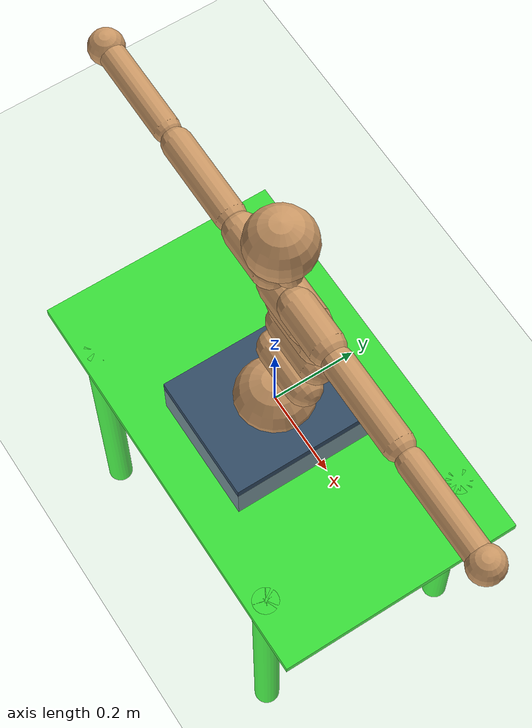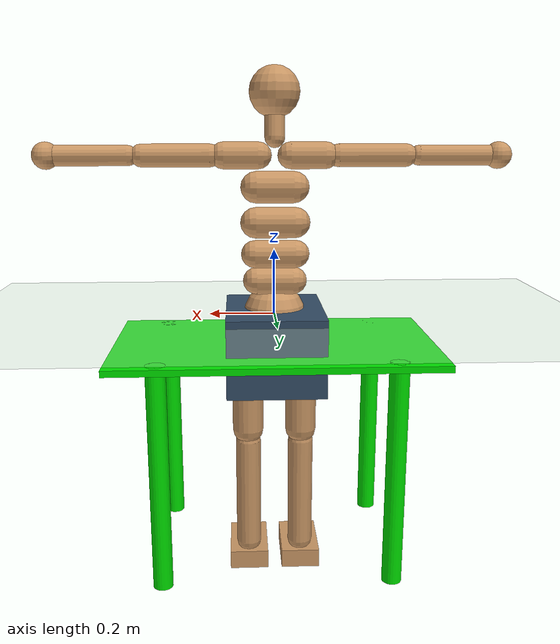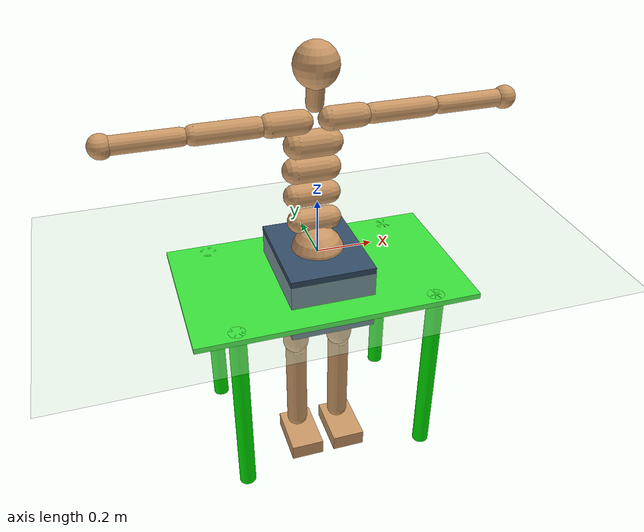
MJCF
<mujoco model="humanoid">
  <compiler angle="degree" inertiafromgeom="true" coordinate="global"/>
  <include file="./common/materials.xml"/>
  <visual>
    <headlight ambient=".4 .4 .4" diffuse=".8 .8 .8" specular="0.1 0.1 0.1"/>
    <map znear=".01"/>
    <quality shadowsize="2048"/>
  </visual>
  <default>
    <joint damping="0.0" armature="0.01" stiffness="0.0" limited="true"/>
    <geom conaffinity="7" condim="1" contype="7" margin="0.001" material="self" rgba="0.8 0.6 .4 1"/>
    <default class="expert">
        <geom conaffinity="7" condim="1" contype="7" margin="0.001" material="self" rgba="0.5 0.0 0.0 1"/>
    </default>
  </default>
  <statistic extent="3" center="0 0 1"/>
  <option timestep="0.00222222222">
    <flag contact="disable"/>
  </option>
  <asset>
    <texture type="skybox" file="./common/sky1.png" gridsize="3 4" gridlayout=".U..LFRB.D.." width="8192" height="8192"/>
    <texture builtin="flat" height="1278" mark="cross" markrgb="1 1 1" name="texgeom" random="0.01" rgb1=".8 .6 .4" rgb2=".8 .6 .4" type="cube" width="127"/>
    <material name="geom" emission="0.2" texture="texgeom" texuniform="true"/>
  </asset>
  <worldbody>
    <light cutoff="100" diffuse="1 1 1" dir="-0 0 -1.3" directional="true" exponent="1" pos="0 0 1.3" specular=".1 .1 .1"/>
    <geom condim="3" friction="1. .1 .1" material="grid" name="floor" pos="0 0 0" rgba=".8 .9 .8 1" size="100 100 .2" type="plane"/>
    <body name="box" pos="0 0 0">
      <joint limited="false" name="box" type="free"/>
      <geom contype="3" conaffinity="3" type="box" size="0.15 0.19 0.120" pos="0 0 -0.1" euler="0 0 0" rgba="0.2 0.3 0.4 1" condim="3" mass="1.0"/>
    </body>
    <body name="table" pos="0 0 0">
      <joint limited="false" name="table" type="free"/>
      <geom contype="3" conaffinity="3" type="box" size="0.499 0.294 0.01" pos="0.0 0.0 -0.1" euler="0 0 0" rgba="0 0.9 0 1"    condim="3" mass="1.0"/>
      <geom contype="3" conaffinity="3" type="cylinder" size="0.03 0.35" pos="-0.35 -0.25 -0.44" euler="0 0 0" rgba="0 0.9 0 1" condim="3" mass="500.0"/>
      <geom contype="3" conaffinity="3" type="cylinder" size="0.03 0.35" pos="-0.35  0.25 -0.44" euler="0 0 0" rgba="0 0.9 0 1" condim="3" mass="500.0"/>
      <geom contype="3" conaffinity="3" type="cylinder" size="0.03 0.35" pos=" 0.35 -0.25 -0.44" euler="0 0 0" rgba="0 0.9 0 1" condim="3" mass="500.0"/>
      <geom contype="3" conaffinity="3" type="cylinder" size="0.03 0.35" pos=" 0.35  0.25 -0.44" euler="0 0 0" rgba="0 0.9 0 1" condim="3" mass="500.0"/>
    </body>
    <body name="Hips" user="0.0000 0.0146 0.0054" pos="0.0000 0.0146 0.0054">
      <joint armature="0" damping="0" limited="false" name="Hips" pos="0.0000 0.0000 0.0000" stiffness="0" type="free"/>
      <geom pos="0.0000 0.0000 0.0000" size="0.0950" type="sphere"/>
      <body name="Spine" user="0.0000 0.0591 0.1523" pos="0.0000 0.0146 0.0054">
        <geom fromto="-0.0550 0.0369 0.1109 0.0550 0.0369 0.1109" size="0.0420" type="capsule"/>
        <joint axis="1.0000 0.0000 0.0000" name="Spine_x" pos="0.0000 0.0439 0.0658" range="-180.0000 180.0000" type="hinge"/>
        <joint axis="0.0000 1.0000 0.0000" name="Spine_y" pos="0.0000 0.0439 0.0658" range="-180.0000 180.0000" type="hinge"/>
        <joint axis="0.0000 0.0000 1.0000" name="Spine_z" pos="0.0000 0.0439 0.0658" range="-180.0000 180.0000" type="hinge"/>
        <body name="Spine1" user="0.0000 0.0668 0.2397" pos="0.0000 0.0591 0.1523">
          <geom fromto="-0.0600 0.0630 0.1960 0.0600 0.0630 0.1960" size="0.0420" type="capsule"/>
          <joint axis="1.0000 0.0000 0.0000" name="Spine1_x" pos="0.0000 0.0591 0.1523" range="-180.0000 180.0000" type="hinge"/>
          <joint axis="0.0000 1.0000 0.0000" name="Spine1_y" pos="0.0000 0.0591 0.1523" range="-180.0000 180.0000" type="hinge"/>
          <joint axis="0.0000 0.0000 1.0000" name="Spine1_z" pos="0.0000 0.0591 0.1523" range="-180.0000 180.0000" type="hinge"/>
          <body name="Spine2" user="0.0000 0.0668 0.3275" pos="0.0000 0.0668 0.2397">
            <geom fromto="-0.0575 0.0668 0.2896 0.0575 0.0668 0.2896" size="0.0460" type="capsule"/>
            <joint axis="1.0000 0.0000 0.0000" name="Spine2_x" pos="0.0000 0.0668 0.2397" range="-180.0000 180.0000" type="hinge"/>
            <joint axis="0.0000 1.0000 0.0000" name="Spine2_y" pos="0.0000 0.0668 0.2397" range="-180.0000 180.0000" type="hinge"/>
            <joint axis="0.0000 0.0000 1.0000" name="Spine2_z" pos="0.0000 0.0668 0.2397" range="-180.0000 180.0000" type="hinge"/>
            <body name="Spine3" user="0.0000 0.0240 0.5074" pos="0.0000 0.0668 0.3275">
              <geom fromto="-0.0550 0.0454 0.3914 0.0550 0.0454 0.3914" size="0.0470" type="capsule"/>
              <joint axis="1.0000 0.0000 0.0000" name="Spine3_x" pos="0.0000 0.0668 0.3275" range="-180.0000 180.0000" type="hinge"/>
              <joint axis="0.0000 1.0000 0.0000" name="Spine3_y" pos="0.0000 0.0668 0.3275" range="-180.0000 180.0000" type="hinge"/>
              <joint axis="0.0000 0.0000 1.0000" name="Spine3_z" pos="0.0000 0.0668 0.3275" range="-180.0000 180.0000" type="hinge"/>
              <body name="Neck" user="0.0000 0.0129 0.6768" pos="0.0000 0.0240 0.5074">
                <joint axis="1.0000 0.0000 0.0000" name="Neck_x" pos="0.0000 0.0339 0.5579" range="-180.0000 180.0000" type="hinge"/>
                <joint axis="0.0000 1.0000 0.0000" name="Neck_y" pos="0.0000 0.0339 0.5579" range="-180.0000 180.0000" type="hinge"/>
                <joint axis="0.0000 0.0000 1.0000" name="Neck_z" pos="0.0000 0.0339 0.5579" range="-180.0000 180.0000" type="hinge"/>
                <geom fromto="0.0000 0.0304 0.5336 0.0000 0.0164 0.6131" size="0.0300" type="capsule"/>
                <body name="Head" user="0.0000 0.0129 0.8188" pos="0.0000 0.0129 0.6768">
                  <geom pos="0.0000 0.0129 0.6628" size="0.0750" type="sphere"/>
                  <joint axis="1.0000 0.0000 0.0000" name="Head_x" pos="0.0000 0.0129 0.6768" range="-180.0000 180.0000" type="hinge"/>
                  <joint axis="0.0000 1.0000 0.0000" name="Head_y" pos="0.0000 0.0129 0.6768" range="-180.0000 180.0000" type="hinge"/>
                  <joint axis="0.0000 0.0000 1.0000" name="Head_z" pos="0.0000 0.0129 0.6768" range="-180.0000 180.0000" type="hinge"/>
                </body>
              </body>
              <body name="RightShoulder" user="-0.1708 0.0191 0.4821" pos="0.0000 0.0240 0.5074">
                <joint axis="1.0000 0.0000 0.0000" name="RightShoulder_x" pos="-0.0286 0.0191 0.4821" range="-180.0000 180.0000" type="hinge"/>
                <joint axis="0.0000 1.0000 0.0000" name="RightShoulder_y" pos="-0.0286 0.0191 0.4821" range="-180.0000 180.0000" type="hinge"/>
                <joint axis="0.0000 0.0000 1.0000" name="RightShoulder_z" pos="-0.0286 0.0191 0.4821" range="-180.0000 180.0000" type="hinge"/>
                <geom fromto="-0.0486 0.0191 0.4821 -0.1508 0.0191 0.4821" size="0.0400" type="capsule"/>
                <body name="RightArm" user="-0.4103 0.0191 0.4821" pos="-0.1708 0.0191 0.4821">
                  <joint axis="1.0000 0.0000 0.0000" name="RightArm_x" pos="-0.1708 0.0191 0.4821" range="-180.0000 180.0000" type="hinge"/>
                  <joint axis="0.0000 1.0000 0.0000" name="RightArm_y" pos="-0.1708 0.0191 0.4821" range="-180.0000 180.0000" type="hinge"/>
                  <joint axis="0.0000 0.0000 1.0000" name="RightArm_z" pos="-0.1708 0.0191 0.4821" range="-180.0000 180.0000" type="hinge"/>
                  <geom fromto="-0.1908 0.0191 0.4821 -0.3903 0.0191 0.4821" size="0.0340" type="capsule"/>
                  <body name="RightForeArm" user="-0.6643 0.0191 0.4821" pos="-0.4103 0.0191 0.4821">
                    <joint axis="0.0000 0.0000 1.0000" name="RightForeArm_z" pos="-0.4103 0.0191 0.4821" range="-180.0000 180.0000" type="hinge"/>
                    <geom fromto="-0.4303 0.0191 0.4821 -0.6443 0.0191 0.4821" size="0.0300" type="capsule"/>
                    <body name="RightHand" user="-0.7282 0.0191 0.4821" pos="-0.6643 0.0191 0.4821">
                      <geom pos="-0.6683 0.0191 0.4821" size="0.0400" type="sphere"/>
                      <joint axis="1.0000 0.0000 0.0000" name="RightHand_x" pos="-0.6643 0.0191 0.4821" range="-180.0000 180.0000" type="hinge"/>
                      <joint axis="0.0000 1.0000 0.0000" name="RightHand_y" pos="-0.6643 0.0191 0.4821" range="-180.0000 180.0000" type="hinge"/>
                      <joint axis="0.0000 0.0000 1.0000" name="RightHand_z" pos="-0.6643 0.0191 0.4821" range="-180.0000 180.0000" type="hinge"/>
                    </body>
                  </body>
                </body>
              </body>
              <body name="LeftShoulder" user="0.1708 0.0191 0.4821" pos="-0.0000 0.0240 0.5074">
                <joint axis="1.0000 0.0000 0.0000" name="LeftShoulder_x" pos="0.0286 0.0191 0.4821" range="-180.0000 180.0000" type="hinge"/>
                <joint axis="0.0000 1.0000 0.0000" name="LeftShoulder_y" pos="0.0286 0.0191 0.4821" range="-180.0000 180.0000" type="hinge"/>
                <joint axis="0.0000 0.0000 1.0000" name="LeftShoulder_z" pos="0.0286 0.0191 0.4821" range="-180.0000 180.0000" type="hinge"/>
                <geom fromto="0.0486 0.0191 0.4821 0.1508 0.0191 0.4821" size="0.0400" type="capsule"/>
                <body name="LeftArm" user="0.4103 0.0191 0.4821" pos="0.1708 0.0191 0.4821">
                  <joint axis="1.0000 0.0000 0.0000" name="LeftArm_x" pos="0.1708 0.0191 0.4821" range="-180.0000 180.0000" type="hinge"/>
                  <joint axis="0.0000 1.0000 0.0000" name="LeftArm_y" pos="0.1708 0.0191 0.4821" range="-180.0000 180.0000" type="hinge"/>
                  <joint axis="0.0000 0.0000 1.0000" name="LeftArm_z" pos="0.1708 0.0191 0.4821" range="-180.0000 180.0000" type="hinge"/>
                  <geom fromto="0.1908 0.0191 0.4821 0.3903 0.0191 0.4821" size="0.0340" type="capsule"/>
                  <body name="LeftForeArm" user="0.6643 0.0191 0.4821" pos="0.4103 0.0191 0.4821">
                    <joint axis="0.0000 0.0000 1.0000" name="LeftForeArm_z" pos="0.4103 0.0191 0.4821" range="-180.0000 180.0000" type="hinge"/>
                    <geom fromto="0.4303 0.0191 0.4821 0.6443 0.0191 0.4821" size="0.0300" type="capsule"/>
                    <body name="LeftHand" user="0.7282 0.0191 0.4821" pos="0.6643 0.0191 0.4821">
                      <geom pos="0.6683 0.0191 0.4821" size="0.0400" type="sphere"/>
                      <joint axis="1.0000 0.0000 0.0000" name="LeftHand_x" pos="0.6643 0.0191 0.4821" range="-180.0000 180.0000" type="hinge"/>
                      <joint axis="0.0000 1.0000 0.0000" name="LeftHand_y" pos="0.6643 0.0191 0.4821" range="-180.0000 180.0000" type="hinge"/>
                      <joint axis="0.0000 0.0000 1.0000" name="LeftHand_z" pos="0.6643 0.0191 0.4821" range="-180.0000 180.0000" type="hinge"/>
                    </body>
                  </body>
                </body>
              </body>
            </body>
          </body>
        </body>
      </body>
      <body name="RightUpLeg" user="-0.0849 0.0000 -0.4027" pos="0.0000 0.0146 0.0054">
        <joint axis="1.0000 0.0000 0.0000" name="RightUpLeg_x" pos="-0.0849 0.0000 -0.0248" range="-180.0000 180.0000" type="hinge"/>
        <joint axis="0.0000 1.0000 0.0000" name="RightUpLeg_y" pos="-0.0849 0.0000 -0.0248" range="-180.0000 180.0000" type="hinge"/>
        <joint axis="0.0000 0.0000 1.0000" name="RightUpLeg_z" pos="-0.0849 0.0000 -0.0248" range="-180.0000 180.0000" type="hinge"/>
        <geom fromto="-0.0849 0.0000 -0.0448 -0.0849 0.0000 -0.3827" size="0.0490" type="capsule"/>
        <body name="RightLeg" user="-0.0849 0.0000 -0.7988" pos="-0.0849 0.0000 -0.4027">
          <joint axis="1.0000 0.0000 0.0000" name="RightLeg_x" pos="-0.0849 0.0000 -0.4027" range="-180.0000 180.0000" type="hinge"/>
          <geom contype="1" conaffinity="1" fromto="-0.0849 0.0000 -0.4227 -0.0849 0.0000 -0.7788" size="0.0400" type="capsule"/>
          <body name="RightFoot" user="-0.0849 -0.1308 -0.8464" pos="-0.0849 0.0000 -0.7988">
            <geom contype="1" conaffinity="1" pos="-0.0849 -0.0514 -0.8306" size="0.0620 0.1000 0.0300" quat="1.0000 -0.0000 -0.0000 -0.0000" type="box"/>
            <joint axis="1.0000 0.0000 0.0000" name="RightFoot_x" pos="-0.0849 0.0000 -0.7988" range="-180.0000 180.0000" type="hinge"/>
            <joint axis="0.0000 1.0000 0.0000" name="RightFoot_y" pos="-0.0849 0.0000 -0.7988" range="-180.0000 180.0000" type="hinge"/>
            <joint axis="0.0000 0.0000 1.0000" name="RightFoot_z" pos="-0.0849 0.0000 -0.7988" range="-180.0000 180.0000" type="hinge"/>
          </body>
        </body>
      </body>
      <body name="LeftUpLeg" user="0.0849 0.0000 -0.4027" pos="-0.0000 0.0146 0.0054">
        <joint axis="1.0000 0.0000 0.0000" name="LeftUpLeg_x" pos="0.0849 0.0000 -0.0248" range="-180.0000 180.0000" type="hinge"/>
        <joint axis="0.0000 1.0000 0.0000" name="LeftUpLeg_y" pos="0.0849 0.0000 -0.0248" range="-180.0000 180.0000" type="hinge"/>
        <joint axis="0.0000 0.0000 1.0000" name="LeftUpLeg_z" pos="0.0849 0.0000 -0.0248" range="-180.0000 180.0000" type="hinge"/>
        <geom fromto="0.0849 0.0000 -0.0448 0.0849 0.0000 -0.3827" size="0.0490" type="capsule"/>
        <body name="LeftLeg" user="0.0849 0.0000 -0.7988" pos="0.0849 0.0000 -0.4027">
          <joint axis="1.0000 0.0000 0.0000" name="LeftLeg_x" pos="0.0849 0.0000 -0.4027" range="-180.0000 180.0000" type="hinge"/>
          <geom contype="2" conaffinity="2" fromto="0.0849 0.0000 -0.4227 0.0849 0.0000 -0.7788" size="0.0400" type="capsule"/>
          <body name="LeftFoot" user="0.0849 -0.1308 -0.8464" pos="0.0849 0.0000 -0.7988">
            <geom contype="2" conaffinity="2" pos="0.0849 -0.0514 -0.8306" size="0.0620 0.1000 0.0300" quat="1.0000 -0.0000 -0.0000 0.0000" type="box"/>
            <joint axis="1.0000 0.0000 0.0000" name="LeftFoot_x" pos="0.0849 0.0000 -0.7988" range="-180.0000 180.0000" type="hinge"/>
            <joint axis="0.0000 1.0000 0.0000" name="LeftFoot_y" pos="0.0849 0.0000 -0.7988" range="-180.0000 180.0000" type="hinge"/>
            <joint axis="0.0000 0.0000 1.0000" name="LeftFoot_z" pos="0.0849 0.0000 -0.7988" range="-180.0000 180.0000" type="hinge"/>
          </body>
        </body>
      </body>
    </body>
    <body name="e_Hips" childclass="expert" user="0.0000 0.0146 0.0054" pos="0.0000 0.0146 0.0054">
      <joint armature="0" damping="0" limited="false" name="e_Hips" pos="0.0000 0.0000 0.0000" stiffness="0" type="free"/>
      <geom pos="0.0000 0.0000 0.0000" size="0.0950" type="sphere"/>
      <body name="e_Spine" user="0.0000 0.0591 0.1523" pos="0.0000 0.0146 0.0054">
        <geom fromto="-0.0550 0.0369 0.1109 0.0550 0.0369 0.1109" size="0.0420" type="capsule"/>
        <joint axis="1.0000 0.0000 0.0000" name="e_Spine_x" pos="0.0000 0.0439 0.0658" range="-180.0000 180.0000" type="hinge"/>
        <joint axis="0.0000 1.0000 0.0000" name="e_Spine_y" pos="0.0000 0.0439 0.0658" range="-180.0000 180.0000" type="hinge"/>
        <joint axis="0.0000 0.0000 1.0000" name="e_Spine_z" pos="0.0000 0.0439 0.0658" range="-180.0000 180.0000" type="hinge"/>
        <body name="e_Spine1" user="0.0000 0.0668 0.2397" pos="0.0000 0.0591 0.1523">
          <geom fromto="-0.0600 0.0630 0.1960 0.0600 0.0630 0.1960" size="0.0420" type="capsule"/>
          <joint axis="1.0000 0.0000 0.0000" name="e_Spine1_x" pos="0.0000 0.0591 0.1523" range="-180.0000 180.0000" type="hinge"/>
          <joint axis="0.0000 1.0000 0.0000" name="e_Spine1_y" pos="0.0000 0.0591 0.1523" range="-180.0000 180.0000" type="hinge"/>
          <joint axis="0.0000 0.0000 1.0000" name="e_Spine1_z" pos="0.0000 0.0591 0.1523" range="-180.0000 180.0000" type="hinge"/>
          <body name="e_Spine2" user="0.0000 0.0668 0.3275" pos="0.0000 0.0668 0.2397">
            <geom fromto="-0.0575 0.0668 0.2896 0.0575 0.0668 0.2896" size="0.0460" type="capsule"/>
            <joint axis="1.0000 0.0000 0.0000" name="e_Spine2_x" pos="0.0000 0.0668 0.2397" range="-180.0000 180.0000" type="hinge"/>
            <joint axis="0.0000 1.0000 0.0000" name="e_Spine2_y" pos="0.0000 0.0668 0.2397" range="-180.0000 180.0000" type="hinge"/>
            <joint axis="0.0000 0.0000 1.0000" name="e_Spine2_z" pos="0.0000 0.0668 0.2397" range="-180.0000 180.0000" type="hinge"/>
            <body name="e_Spine3" user="0.0000 0.0240 0.5074" pos="0.0000 0.0668 0.3275">
              <geom fromto="-0.0550 0.0454 0.3914 0.0550 0.0454 0.3914" size="0.0470" type="capsule"/>
              <joint axis="1.0000 0.0000 0.0000" name="e_Spine3_x" pos="0.0000 0.0668 0.3275" range="-180.0000 180.0000" type="hinge"/>
              <joint axis="0.0000 1.0000 0.0000" name="e_Spine3_y" pos="0.0000 0.0668 0.3275" range="-180.0000 180.0000" type="hinge"/>
              <joint axis="0.0000 0.0000 1.0000" name="e_Spine3_z" pos="0.0000 0.0668 0.3275" range="-180.0000 180.0000" type="hinge"/>
              <body name="e_Neck" user="0.0000 0.0129 0.6768" pos="0.0000 0.0240 0.5074">
                <joint axis="1.0000 0.0000 0.0000" name="e_Neck_x" pos="0.0000 0.0339 0.5579" range="-180.0000 180.0000" type="hinge"/>
                <joint axis="0.0000 1.0000 0.0000" name="e_Neck_y" pos="0.0000 0.0339 0.5579" range="-180.0000 180.0000" type="hinge"/>
                <joint axis="0.0000 0.0000 1.0000" name="e_Neck_z" pos="0.0000 0.0339 0.5579" range="-180.0000 180.0000" type="hinge"/>
                <geom fromto="0.0000 0.0304 0.5336 0.0000 0.0164 0.6131" size="0.0300" type="capsule"/>
                <body name="e_Head" user="0.0000 0.0129 0.8188" pos="0.0000 0.0129 0.6768">
                  <geom pos="0.0000 0.0129 0.6628" size="0.0750" type="sphere"/>
                  <joint axis="1.0000 0.0000 0.0000" name="e_Head_x" pos="0.0000 0.0129 0.6768" range="-180.0000 180.0000" type="hinge"/>
                  <joint axis="0.0000 1.0000 0.0000" name="e_Head_y" pos="0.0000 0.0129 0.6768" range="-180.0000 180.0000" type="hinge"/>
                  <joint axis="0.0000 0.0000 1.0000" name="e_Head_z" pos="0.0000 0.0129 0.6768" range="-180.0000 180.0000" type="hinge"/>
                </body>
              </body>
              <body name="e_RightShoulder" user="-0.1708 0.0191 0.4821" pos="0.0000 0.0240 0.5074">
                <joint axis="1.0000 0.0000 0.0000" name="e_RightShoulder_x" pos="-0.0286 0.0191 0.4821" range="-180.0000 180.0000" type="hinge"/>
                <joint axis="0.0000 1.0000 0.0000" name="e_RightShoulder_y" pos="-0.0286 0.0191 0.4821" range="-180.0000 180.0000" type="hinge"/>
                <joint axis="0.0000 0.0000 1.0000" name="e_RightShoulder_z" pos="-0.0286 0.0191 0.4821" range="-180.0000 180.0000" type="hinge"/>
                <geom fromto="-0.0486 0.0191 0.4821 -0.1508 0.0191 0.4821" size="0.0400" type="capsule"/>
                <body name="e_RightArm" user="-0.4103 0.0191 0.4821" pos="-0.1708 0.0191 0.4821">
                  <joint axis="1.0000 0.0000 0.0000" name="e_RightArm_x" pos="-0.1708 0.0191 0.4821" range="-180.0000 180.0000" type="hinge"/>
                  <joint axis="0.0000 1.0000 0.0000" name="e_RightArm_y" pos="-0.1708 0.0191 0.4821" range="-180.0000 180.0000" type="hinge"/>
                  <joint axis="0.0000 0.0000 1.0000" name="e_RightArm_z" pos="-0.1708 0.0191 0.4821" range="-180.0000 180.0000" type="hinge"/>
                  <geom fromto="-0.1908 0.0191 0.4821 -0.3903 0.0191 0.4821" size="0.0340" type="capsule"/>
                  <body name="e_RightForeArm" user="-0.6643 0.0191 0.4821" pos="-0.4103 0.0191 0.4821">
                    <joint axis="0.0000 0.0000 1.0000" name="e_RightForeArm_z" pos="-0.4103 0.0191 0.4821" range="-180.0000 180.0000" type="hinge"/>
                    <geom fromto="-0.4303 0.0191 0.4821 -0.6443 0.0191 0.4821" size="0.0300" type="capsule"/>
                    <body name="e_RightHand" user="-0.7282 0.0191 0.4821" pos="-0.6643 0.0191 0.4821">
                      <geom pos="-0.6683 0.0191 0.4821" size="0.0400" type="sphere"/>
                      <joint axis="1.0000 0.0000 0.0000" name="e_RightHand_x" pos="-0.6643 0.0191 0.4821" range="-180.0000 180.0000" type="hinge"/>
                      <joint axis="0.0000 1.0000 0.0000" name="e_RightHand_y" pos="-0.6643 0.0191 0.4821" range="-180.0000 180.0000" type="hinge"/>
                      <joint axis="0.0000 0.0000 1.0000" name="e_RightHand_z" pos="-0.6643 0.0191 0.4821" range="-180.0000 180.0000" type="hinge"/>
                    </body>
                  </body>
                </body>
              </body>
              <body name="e_LeftShoulder" user="0.1708 0.0191 0.4821" pos="-0.0000 0.0240 0.5074">
                <joint axis="1.0000 0.0000 0.0000" name="e_LeftShoulder_x" pos="0.0286 0.0191 0.4821" range="-180.0000 180.0000" type="hinge"/>
                <joint axis="0.0000 1.0000 0.0000" name="e_LeftShoulder_y" pos="0.0286 0.0191 0.4821" range="-180.0000 180.0000" type="hinge"/>
                <joint axis="0.0000 0.0000 1.0000" name="e_LeftShoulder_z" pos="0.0286 0.0191 0.4821" range="-180.0000 180.0000" type="hinge"/>
                <geom fromto="0.0486 0.0191 0.4821 0.1508 0.0191 0.4821" size="0.0400" type="capsule"/>
                <body name="e_LeftArm" user="0.4103 0.0191 0.4821" pos="0.1708 0.0191 0.4821">
                  <joint axis="1.0000 0.0000 0.0000" name="e_LeftArm_x" pos="0.1708 0.0191 0.4821" range="-180.0000 180.0000" type="hinge"/>
                  <joint axis="0.0000 1.0000 0.0000" name="e_LeftArm_y" pos="0.1708 0.0191 0.4821" range="-180.0000 180.0000" type="hinge"/>
                  <joint axis="0.0000 0.0000 1.0000" name="e_LeftArm_z" pos="0.1708 0.0191 0.4821" range="-180.0000 180.0000" type="hinge"/>
                  <geom fromto="0.1908 0.0191 0.4821 0.3903 0.0191 0.4821" size="0.0340" type="capsule"/>
                  <body name="e_LeftForeArm" user="0.6643 0.0191 0.4821" pos="0.4103 0.0191 0.4821">
                    <joint axis="0.0000 0.0000 1.0000" name="e_LeftForeArm_z" pos="0.4103 0.0191 0.4821" range="-180.0000 180.0000" type="hinge"/>
                    <geom fromto="0.4303 0.0191 0.4821 0.6443 0.0191 0.4821" size="0.0300" type="capsule"/>
                    <body name="e_LeftHand" user="0.7282 0.0191 0.4821" pos="0.6643 0.0191 0.4821">
                      <geom pos="0.6683 0.0191 0.4821" size="0.0400" type="sphere"/>
                      <joint axis="1.0000 0.0000 0.0000" name="e_LeftHand_x" pos="0.6643 0.0191 0.4821" range="-180.0000 180.0000" type="hinge"/>
                      <joint axis="0.0000 1.0000 0.0000" name="e_LeftHand_y" pos="0.6643 0.0191 0.4821" range="-180.0000 180.0000" type="hinge"/>
                      <joint axis="0.0000 0.0000 1.0000" name="e_LeftHand_z" pos="0.6643 0.0191 0.4821" range="-180.0000 180.0000" type="hinge"/>
                    </body>
                  </body>
                </body>
              </body>
            </body>
          </body>
        </body>
      </body>
      <body name="e_RightUpLeg" user="-0.0849 0.0000 -0.4027" pos="0.0000 0.0146 0.0054">
        <joint axis="1.0000 0.0000 0.0000" name="e_RightUpLeg_x" pos="-0.0849 0.0000 -0.0248" range="-180.0000 180.0000" type="hinge"/>
        <joint axis="0.0000 1.0000 0.0000" name="e_RightUpLeg_y" pos="-0.0849 0.0000 -0.0248" range="-180.0000 180.0000" type="hinge"/>
        <joint axis="0.0000 0.0000 1.0000" name="e_RightUpLeg_z" pos="-0.0849 0.0000 -0.0248" range="-180.0000 180.0000" type="hinge"/>
        <geom fromto="-0.0849 0.0000 -0.0448 -0.0849 0.0000 -0.3827" size="0.0490" type="capsule"/>
        <body name="e_RightLeg" user="-0.0849 0.0000 -0.7988" pos="-0.0849 0.0000 -0.4027">
          <joint axis="1.0000 0.0000 0.0000" name="e_RightLeg_x" pos="-0.0849 0.0000 -0.4027" range="-180.0000 180.0000" type="hinge"/>
          <geom contype="1" conaffinity="1" fromto="-0.0849 0.0000 -0.4227 -0.0849 0.0000 -0.7788" size="0.0400" type="capsule"/>
          <body name="e_RightFoot" user="-0.0849 -0.1308 -0.8464" pos="-0.0849 0.0000 -0.7988">
            <geom contype="1" conaffinity="1" pos="-0.0849 -0.0514 -0.8306" size="0.0620 0.1000 0.0300" quat="1.0000 -0.0000 -0.0000 -0.0000" type="box"/>
            <joint axis="1.0000 0.0000 0.0000" name="e_RightFoot_x" pos="-0.0849 0.0000 -0.7988" range="-180.0000 180.0000" type="hinge"/>
            <joint axis="0.0000 1.0000 0.0000" name="e_RightFoot_y" pos="-0.0849 0.0000 -0.7988" range="-180.0000 180.0000" type="hinge"/>
            <joint axis="0.0000 0.0000 1.0000" name="e_RightFoot_z" pos="-0.0849 0.0000 -0.7988" range="-180.0000 180.0000" type="hinge"/>
          </body>
        </body>
      </body>
      <body name="e_LeftUpLeg" user="0.0849 0.0000 -0.4027" pos="-0.0000 0.0146 0.0054">
        <joint axis="1.0000 0.0000 0.0000" name="e_LeftUpLeg_x" pos="0.0849 0.0000 -0.0248" range="-180.0000 180.0000" type="hinge"/>
        <joint axis="0.0000 1.0000 0.0000" name="e_LeftUpLeg_y" pos="0.0849 0.0000 -0.0248" range="-180.0000 180.0000" type="hinge"/>
        <joint axis="0.0000 0.0000 1.0000" name="e_LeftUpLeg_z" pos="0.0849 0.0000 -0.0248" range="-180.0000 180.0000" type="hinge"/>
        <geom fromto="0.0849 0.0000 -0.0448 0.0849 0.0000 -0.3827" size="0.0490" type="capsule"/>
        <body name="e_LeftLeg" user="0.0849 0.0000 -0.7988" pos="0.0849 0.0000 -0.4027">
          <joint axis="1.0000 0.0000 0.0000" name="e_LeftLeg_x" pos="0.0849 0.0000 -0.4027" range="-180.0000 180.0000" type="hinge"/>
          <geom contype="2" conaffinity="2" fromto="0.0849 0.0000 -0.4227 0.0849 0.0000 -0.7788" size="0.0400" type="capsule"/>
          <body name="e_LeftFoot" user="0.0849 -0.1308 -0.8464" pos="0.0849 0.0000 -0.7988">
            <geom contype="2" conaffinity="2" pos="0.0849 -0.0514 -0.8306" size="0.0620 0.1000 0.0300" quat="1.0000 -0.0000 -0.0000 0.0000" type="box"/>
            <joint axis="1.0000 0.0000 0.0000" name="e_LeftFoot_x" pos="0.0849 0.0000 -0.7988" range="-180.0000 180.0000" type="hinge"/>
            <joint axis="0.0000 1.0000 0.0000" name="e_LeftFoot_y" pos="0.0849 0.0000 -0.7988" range="-180.0000 180.0000" type="hinge"/>
            <joint axis="0.0000 0.0000 1.0000" name="e_LeftFoot_z" pos="0.0849 0.0000 -0.7988" range="-180.0000 180.0000" type="hinge"/>
          </body>
        </body>
      </body>
    </body>
  </worldbody>
</mujoco>

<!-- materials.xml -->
<!--
Common textures, colors and materials to be used throughout this suite. Some
materials such as xxx_highlight are activated on occurence of certain events,
for example receiving a positive reward.
-->
<mujoco>
  <asset>
    <texture name="grid" type="2d" builtin="checker" rgb1=".1 .1 .1" rgb2=".3 .3 .3" width="300" height="300" mark="edge" markrgb=".1 .1 .1"/>
    <texture builtin="checker" height="100" name="texplane" rgb1=".1 .1 .1" rgb2=".8 .8 .8" type="2d" width="100"/>
    <texture name="grass" file="./common/grass.png" type="2d"/>
    <material name="grid" texture="grid" texrepeat="1 1" texuniform="true" reflectance=".2"/>
    <material name="MatPlane" reflectance="0.5" shininess="1" specular="1" texrepeat="60 60" texture="texplane"/>
    <material name="GrassPlane" reflectance="0.0" shininess="1" specular="1" texrepeat="400 400" texture="grass"/>
    <material name="self" rgba=".7 .5 .3 1"/>
    <material name="self_default" rgba=".7 .5 .3 1"/>
    <material name="self_highlight" rgba="0 .5 .3 1"/>
    <material name="effector" rgba=".7 .4 .2 1"/>
    <material name="effector_default" rgba=".7 .4 .2 1"/>
    <material name="effector_highlight" rgba="0 .5 .3 1"/>
    <material name="decoration" rgba=".3 .5 .7 1"/>
    <material name="eye" rgba="0 .2 1 1"/>
    <material name="target" rgba=".6 .3 .3 1"/>
    <material name="target_default" rgba=".6 .3 .3 1"/>
    <material name="target_highlight" rgba=".6 .3 .3 .4"/>
    <material name="expert" rgba=".6 .3 .3 .4"/>
  </asset>
</mujoco>
